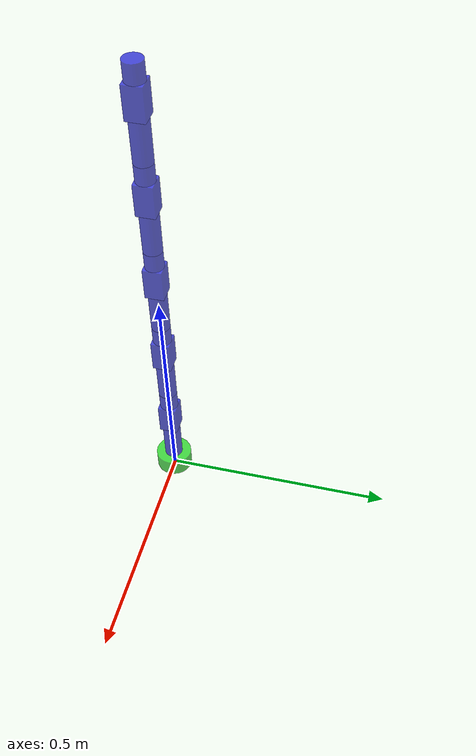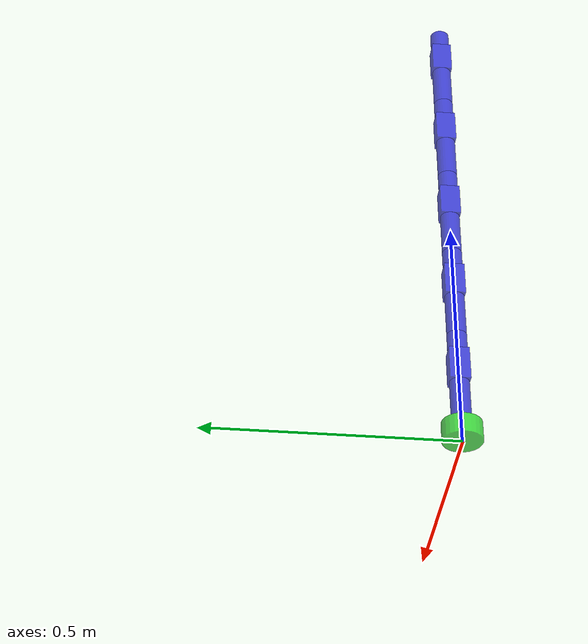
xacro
<?xml version="1.0"?>
<robot xmlns:xacro="http://www.ros.org/wiki/xacro" name="snake">
  <xacro:property name="radius" value="0.02"/>
  <xacro:property name="base_height" value="0.04"/>
  <xacro:property name="link1_height" value="0.092"/>
  <xacro:property name="link2_height" value="0.07"/>
  <xacro:property name="link3_height" value="0.04"/>

  <material name="blue">
    <color rgba="0 0 0.8 0.7"/>
  </material>

  <material name="green">
    <color rgba="0 0.8 0 0.7"/>
  </material>

  <!-- Base -->
  <link name="base">
    <visual>
      <origin xyz="0 0 0" rpy="0 0 0"/>
      <geometry>
        <box size="0.001 0.00 0.001" />
      </geometry>
      <material name="White">
        <color rgba="1.0 1.0 1.0 1.0"/>
      </material>
    </visual>
    <collision>
      <origin xyz="0 0 0" rpy="0 0 0"/>
      <geometry>
        <box size="0.001 0.00 0.001" />
      </geometry>
    </collision>
  </link>

  <joint name="base_to_group_1_link0" type="fixed">
    <parent link="base"/>
    <child link="group_1_link0"/>
    <origin rpy="0 0 0" xyz="0 0 0"/>
  </joint>

  <link name="group_1_link0">
    <visual>
      <geometry>
        <cylinder radius="${radius*2}" length="${base_height}"/>
      </geometry>
      <origin rpy="0 0 0" xyz="0 0 ${base_height/2}"/>
      <material name="green"/>
    </visual>

    <collision>
      <geometry>
        <cylinder radius="${radius*2}" length="${base_height}"/>
      </geometry>
      <origin rpy="0 0 0" xyz="0 0 ${base_height/2}"/>
    </collision>
  </link>

  <!-- MACRO for groups of links -->
  <xacro:macro name="snake_group" params="link0 link1 link2 link3">
    <joint name="${link0}_to_${link1}" type="revolute">
      <parent link="${link0}"/>
      <child link="${link1}"/>
      <origin rpy="0 0 0" xyz="0 0 ${base_height}"/>
      <axis xyz="1 0 0"/>
      <limit lower="${-pi/2}" upper="${pi/2}" effort="100" velocity="5"/>
    </joint>

    <link name="${link1}">
      <visual>
        <geometry>
          <cylinder radius="${radius}" length="${link1_height}"/>
        </geometry>
        <origin rpy="0 0 0" xyz="0 0 ${link1_height/2}"/>
        <material name="blue"/>
      </visual>

      <collision>
        <geometry>
          <cylinder radius="${radius}" length="${link1_height}"/>
        </geometry>
        <origin rpy="0 0 0" xyz="0 0 ${link1_height/2}"/>
      </collision>
    </link>

    <joint name="${link1}_to_${link2}" type="revolute">
      <parent link="${link1}"/>
      <child link="${link2}"/>
      <origin rpy="0 0 0" xyz="0 0 ${link1_height}"/>
      <axis xyz="0 0 1"/>
      <limit lower="${-pi/3}" upper="${pi/2}" effort="100" velocity="5"/>
    </joint>

    <link name="${link2}">
      <visual>
        <geometry>
          <box size="${radius*2} ${radius*2} ${link2_height}"/>
        </geometry>
        <origin rpy="0 0 0" xyz="0 0 ${link2_height/2}"/>
        <material name="blue"/>
      </visual>

      <collision>
        <geometry>
          <box size="${radius*2} ${radius*2} ${link2_height}"/>
        </geometry>
        <origin rpy="0 0 0" xyz="0 0 ${link2_height/2}"/>
      </collision>
    </link>

    <joint name="${link2}_to_${link3}" type="revolute">
      <parent link="${link2}"/>
      <child link="${link3}"/>
      <origin rpy="0 0 0" xyz="0 0 ${link2_height}"/>
      <axis xyz="0 1 0"/>
      <limit lower="${-pi/3}" upper="${pi/3}" effort="100" velocity="5"/>
    </joint>

    <link name="${link3}">
      <visual>
        <geometry>
          <cylinder radius="${radius}" length="${link3_height}"/>
        </geometry>
        <origin rpy="0 0 0" xyz="0 0 ${link3_height/2}"/>
        <material name="blue"/>
      </visual>

      <collision>
        <geometry>
          <cylinder radius="${radius}" length="${link3_height}"/>
        </geometry>
        <origin rpy="0 0 0" xyz="0 0 ${link3_height/2}"/>
      </collision>
    </link>
  </xacro:macro>

  <!-- Groups of links -->
  <xacro:snake_group link0="group_1_link0" link1="group_1_link1" link2="group_1_link2" link3="group_1_link3"/>
  <xacro:snake_group link0="group_1_link3" link1="group_2_link1" link2="group_2_link2" link3="group_2_link3"/>
  <xacro:snake_group link0="group_2_link3" link1="group_3_link1" link2="group_3_link2" link3="group_3_link3"/>
  <xacro:snake_group link0="group_3_link3" link1="group_4_link1" link2="group_4_link2" link3="group_4_link3"/>
  <xacro:snake_group link0="group_4_link3" link1="group_5_link1" link2="group_5_link2" link3="group_5_link3"/>
</robot>
